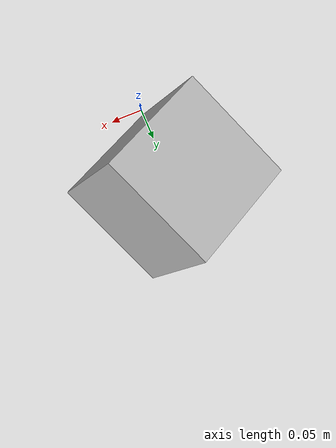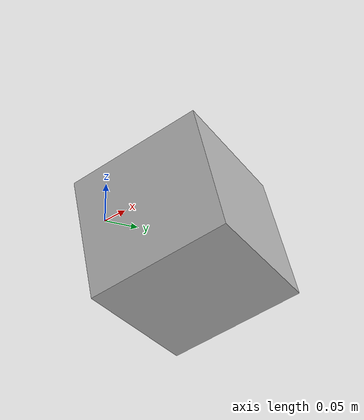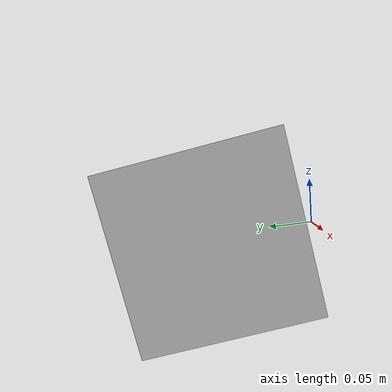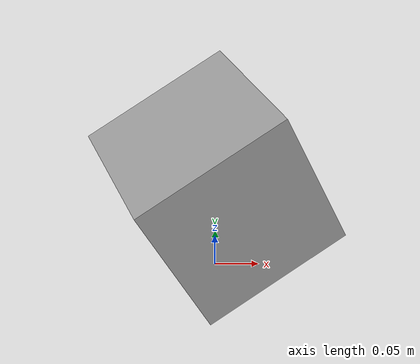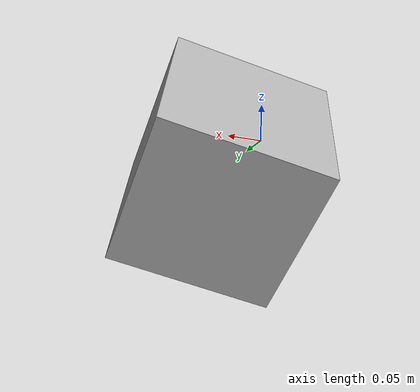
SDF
<?xml version="1.0" ?>
<sdf version="1.7">
  <model name="box skeleton">
    <link name="box">
      <pose>0 0.125 0 1 2 3</pose>
      <inertial>
        <pose>0 0 0 0 0 0</pose>
        <mass>1</mass>
      </inertial>
      <visual name="visual 1">
        <geometry>
          <box>
            <size>0.2 0.2 0.2</size>
          </box>
        </geometry>
      </visual>
      <collision name="collision 1">
        <geometry>
          <box>
            <size>0.2 0.2 0.2</size>
          </box>
        </geometry>
      </collision>
    </link>
  </model>
</sdf>
